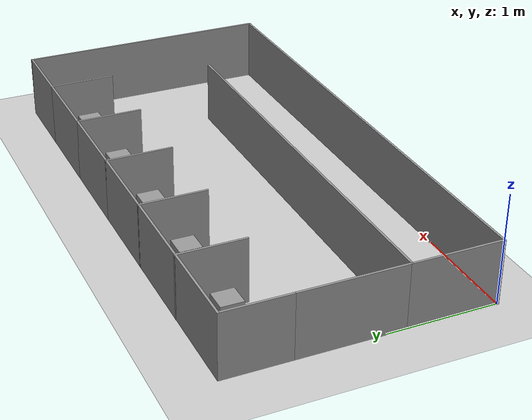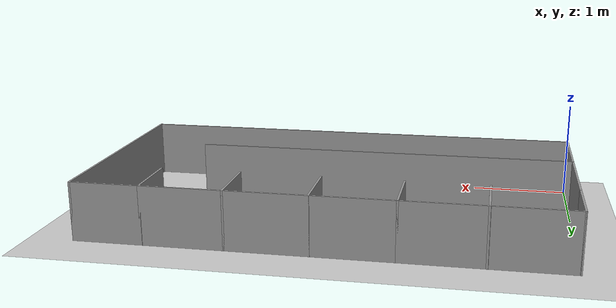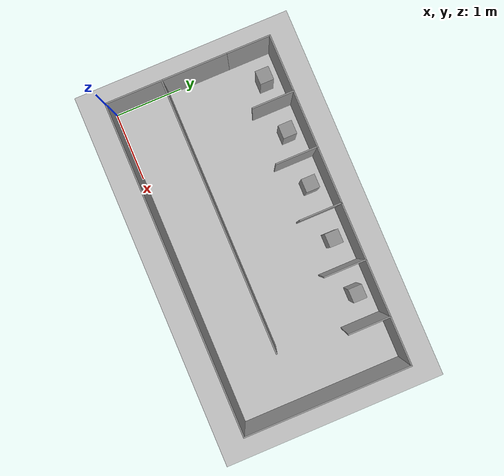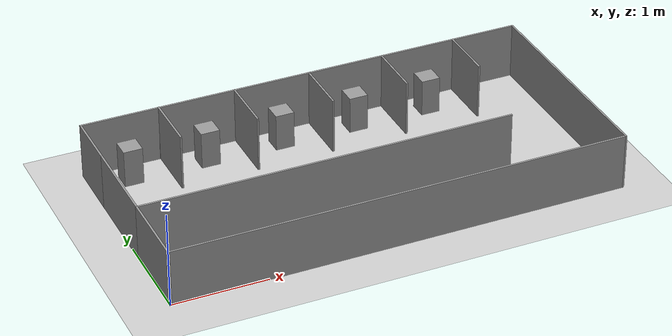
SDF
<sdf version="1.7">
 <world name="default">
  <light name="sun" type="directional">
   <pose>0 0 10 0 -0 0</pose>
   <diffuse>0.8 0.8 0.8 1</diffuse>
   <specular>0.2 0.2 0.2 1</specular>
   <attenuation>
    <range>1000</range>
    <constant>0.9</constant>
    <linear>0.01</linear>
    <quadratic>0.001</quadratic>
   </attenuation>
   <direction>-0.5 0.1 -0.9</direction>
   <spot><inner_angle>0</inner_angle><outer_angle>0</outer_angle><falloff>0</falloff></spot>
  </light>
  <model name="ground_plane">
   <static>1</static>
   <link name="link">
    <collision name="collision">
     <geometry><plane><normal>0 0 1</normal><size>100 100</size></plane></geometry>
     <surface>
      <contact><collide_bitmask>65535</collide_bitmask></contact>
      <friction><ode><mu>100</mu><mu2>50</mu2></ode></friction>
     </surface>
    </collision>
    <visual name="visual">
     <cast_shadows>0</cast_shadows>
     <geometry><plane><normal>0 0 1</normal><size>100 100</size></plane></geometry>
     <material>
      <script><uri>file://media/materials/scripts/gazebo.material</uri><name>Gazebo/Grey</name></script>
     </material>
    </visual>
   </link>
  </model>
  <gravity>0 0 -9.8</gravity>
  <magnetic_field>6e-06 2.3e-05 -4.2e-05</magnetic_field>
  <atmosphere type="adiabatic"/>
  <physics type="ode">
   <max_step_size>0.001</max_step_size>
   <real_time_factor>1</real_time_factor>
   <real_time_update_rate>1000</real_time_update_rate>
  </physics>
  <scene><ambient>0.4 0.4 0.4 1</ambient><background>0.7 0.7 0.7 1</background><shadows>1</shadows></scene>
  <spherical_coordinates>
   <surface_model>EARTH_WGS84</surface_model>
   <latitude_deg>0</latitude_deg>
   <longitude_deg>0</longitude_deg>
   <elevation>0</elevation>
   <heading_deg>0</heading_deg>
  </spherical_coordinates>
  <model name="test">
   <link name="Wall_101">
    <pose>-1.99 1.2 0 0 -0 0</pose>
    <visual name="Wall_101_Visual">
     <pose>0 0 0.3 0 -0 0</pose>
     <geometry><box><size>0.84 0.02 0.6</size></box></geometry>
     <material>
      <script><uri>file://media/materials/scripts/gazebo.material</uri><name>Gazebo/Grey</name></script>
      <ambient>1 1 1 1</ambient>
      <shader type="pixel"/>
     </material>
     <meta><layer>0</layer></meta>
    </visual>
    <collision name="Wall_101_Collision">
     <pose>0 0 0.3 0 -0 0</pose>
     <geometry><box><size>0.84 0.02 0.6</size></box></geometry>
     <surface>
      <friction>
       <ode><mu>1</mu><mu2>1</mu2><fdir1>0 0 0</fdir1><slip1>0</slip1><slip2>0</slip2></ode>
       <torsional>
        <coefficient>1</coefficient>
        <patch_radius>0</patch_radius>
        <surface_radius>0</surface_radius>
        <use_patch_radius>1</use_patch_radius>
        <ode><slip>0</slip></ode>
       </torsional>
      </friction>
      <bounce><restitution_coefficient>0</restitution_coefficient><threshold>1e+06</threshold></bounce>
      <contact>
       <collide_without_contact>0</collide_without_contact>
       <collide_without_contact_bitmask>1</collide_without_contact_bitmask>
       <collide_bitmask>1</collide_bitmask>
       <ode>
        <soft_cfm>0</soft_cfm>
        <soft_erp>0.2</soft_erp>
        <kp>1e+13</kp>
        <kd>1</kd>
        <max_vel>0.01</max_vel>
        <min_depth>0</min_depth>
       </ode>
       <bullet>
        <split_impulse>1</split_impulse>
        <split_impulse_penetration_threshold>-0.01</split_impulse_penetration_threshold>
        <soft_cfm>0</soft_cfm>
        <soft_erp>0.2</soft_erp>
        <kp>1e+13</kp>
        <kd>1</kd>
       </bullet>
      </contact>
     </surface>
    </collision>
   </link>
   <link name="Wall_103">
    <pose>-1.57705 0.901891 0 0 0 -1.5708</pose>
    <visual name="Wall_103_Visual">
     <pose>0 0 0.3 0 -0 0</pose>
     <geometry><box><size>0.62 0.02 0.6</size></box></geometry>
     <material>
      <script><uri>file://media/materials/scripts/gazebo.material</uri><name>Gazebo/Grey</name></script>
      <ambient>1 1 1 1</ambient>
      <shader type="pixel"/>
     </material>
     <meta><layer>0</layer></meta>
    </visual>
    <collision name="Wall_103_Collision">
     <pose>0 0 0.3 0 -0 0</pose>
     <geometry><box><size>0.62 0.02 0.6</size></box></geometry>
     <surface>
      <friction>
       <ode><mu>1</mu><mu2>1</mu2><fdir1>0 0 0</fdir1><slip1>0</slip1><slip2>0</slip2></ode>
       <torsional>
        <coefficient>1</coefficient>
        <patch_radius>0</patch_radius>
        <surface_radius>0</surface_radius>
        <use_patch_radius>1</use_patch_radius>
        <ode><slip>0</slip></ode>
       </torsional>
      </friction>
      <bounce><restitution_coefficient>0</restitution_coefficient><threshold>1e+06</threshold></bounce>
      <contact>
       <collide_without_contact>0</collide_without_contact>
       <collide_without_contact_bitmask>1</collide_without_contact_bitmask>
       <collide_bitmask>1</collide_bitmask>
       <ode>
        <soft_cfm>0</soft_cfm>
        <soft_erp>0.2</soft_erp>
        <kp>1e+13</kp>
        <kd>1</kd>
        <max_vel>0.01</max_vel>
        <min_depth>0</min_depth>
       </ode>
       <bullet>
        <split_impulse>1</split_impulse>
        <split_impulse_penetration_threshold>-0.01</split_impulse_penetration_threshold>
        <soft_cfm>0</soft_cfm>
        <soft_erp>0.2</soft_erp>
        <kp>1e+13</kp>
        <kd>1</kd>
       </bullet>
      </contact>
     </surface>
    </collision>
   </link>
   <link name="Wall_105">
    <pose>-1.17 1.2 0 0 -0 0</pose>
    <visual name="Wall_105_Visual">
     <pose>0 0 0.3 0 -0 0</pose>
     <geometry><box><size>0.84 0.02 0.6</size></box></geometry>
     <material>
      <script><uri>file://media/materials/scripts/gazebo.material</uri><name>Gazebo/Grey</name></script>
      <ambient>1 1 1 1</ambient>
      <shader type="pixel"/>
     </material>
     <meta><layer>0</layer></meta>
    </visual>
    <collision name="Wall_105_Collision">
     <pose>0 0 0.3 0 -0 0</pose>
     <geometry><box><size>0.84 0.02 0.6</size></box></geometry>
     <surface>
      <friction>
       <ode><mu>1</mu><mu2>1</mu2><fdir1>0 0 0</fdir1><slip1>0</slip1><slip2>0</slip2></ode>
       <torsional>
        <coefficient>1</coefficient>
        <patch_radius>0</patch_radius>
        <surface_radius>0</surface_radius>
        <use_patch_radius>1</use_patch_radius>
        <ode><slip>0</slip></ode>
       </torsional>
      </friction>
      <bounce><restitution_coefficient>0</restitution_coefficient><threshold>1e+06</threshold></bounce>
      <contact>
       <collide_without_contact>0</collide_without_contact>
       <collide_without_contact_bitmask>1</collide_without_contact_bitmask>
       <collide_bitmask>1</collide_bitmask>
       <ode>
        <soft_cfm>0</soft_cfm>
        <soft_erp>0.2</soft_erp>
        <kp>1e+13</kp>
        <kd>1</kd>
        <max_vel>0.01</max_vel>
        <min_depth>0</min_depth>
       </ode>
       <bullet>
        <split_impulse>1</split_impulse>
        <split_impulse_penetration_threshold>-0.01</split_impulse_penetration_threshold>
        <soft_cfm>0</soft_cfm>
        <soft_erp>0.2</soft_erp>
        <kp>1e+13</kp>
        <kd>1</kd>
       </bullet>
      </contact>
     </surface>
    </collision>
   </link>
   <link name="Wall_107">
    <pose>-0.76 0.9 0 0 0 -1.5708</pose>
    <visual name="Wall_107_Visual">
     <pose>0 0 0.3 0 -0 0</pose>
     <geometry><box><size>0.62 0.02 0.6</size></box></geometry>
     <material>
      <script><uri>file://media/materials/scripts/gazebo.material</uri><name>Gazebo/Grey</name></script>
      <ambient>1 1 1 1</ambient>
      <shader type="pixel"/>
     </material>
     <meta><layer>0</layer></meta>
    </visual>
    <collision name="Wall_107_Collision">
     <pose>0 0 0.3 0 -0 0</pose>
     <geometry><box><size>0.62 0.02 0.6</size></box></geometry>
     <surface>
      <friction>
       <ode><mu>1</mu><mu2>1</mu2><fdir1>0 0 0</fdir1><slip1>0</slip1><slip2>0</slip2></ode>
       <torsional>
        <coefficient>1</coefficient>
        <patch_radius>0</patch_radius>
        <surface_radius>0</surface_radius>
        <use_patch_radius>1</use_patch_radius>
        <ode><slip>0</slip></ode>
       </torsional>
      </friction>
      <bounce><restitution_coefficient>0</restitution_coefficient><threshold>1e+06</threshold></bounce>
      <contact>
       <collide_without_contact>0</collide_without_contact>
       <collide_without_contact_bitmask>1</collide_without_contact_bitmask>
       <collide_bitmask>1</collide_bitmask>
       <ode>
        <soft_cfm>0</soft_cfm>
        <soft_erp>0.2</soft_erp>
        <kp>1e+13</kp>
        <kd>1</kd>
        <max_vel>0.01</max_vel>
        <min_depth>0</min_depth>
       </ode>
       <bullet>
        <split_impulse>1</split_impulse>
        <split_impulse_penetration_threshold>-0.01</split_impulse_penetration_threshold>
        <soft_cfm>0</soft_cfm>
        <soft_erp>0.2</soft_erp>
        <kp>1e+13</kp>
        <kd>1</kd>
       </bullet>
      </contact>
     </surface>
    </collision>
   </link>
   <link name="Wall_109">
    <pose>-0.35 1.2 0 0 -0 0</pose>
    <visual name="Wall_109_Visual">
     <pose>0 0 0.3 0 -0 0</pose>
     <geometry><box><size>0.84 0.02 0.6</size></box></geometry>
     <material>
      <script><uri>file://media/materials/scripts/gazebo.material</uri><name>Gazebo/Grey</name></script>
      <ambient>1 1 1 1</ambient>
      <shader type="pixel"/>
     </material>
     <meta><layer>0</layer></meta>
    </visual>
    <collision name="Wall_109_Collision">
     <pose>0 0 0.3 0 -0 0</pose>
     <geometry><box><size>0.84 0.02 0.6</size></box></geometry>
     <surface>
      <friction>
       <ode><mu>1</mu><mu2>1</mu2><fdir1>0 0 0</fdir1><slip1>0</slip1><slip2>0</slip2></ode>
       <torsional>
        <coefficient>1</coefficient>
        <patch_radius>0</patch_radius>
        <surface_radius>0</surface_radius>
        <use_patch_radius>1</use_patch_radius>
        <ode><slip>0</slip></ode>
       </torsional>
      </friction>
      <bounce><restitution_coefficient>0</restitution_coefficient><threshold>1e+06</threshold></bounce>
      <contact>
       <collide_without_contact>0</collide_without_contact>
       <collide_without_contact_bitmask>1</collide_without_contact_bitmask>
       <collide_bitmask>1</collide_bitmask>
       <ode>
        <soft_cfm>0</soft_cfm>
        <soft_erp>0.2</soft_erp>
        <kp>1e+13</kp>
        <kd>1</kd>
        <max_vel>0.01</max_vel>
        <min_depth>0</min_depth>
       </ode>
       <bullet>
        <split_impulse>1</split_impulse>
        <split_impulse_penetration_threshold>-0.01</split_impulse_penetration_threshold>
        <soft_cfm>0</soft_cfm>
        <soft_erp>0.2</soft_erp>
        <kp>1e+13</kp>
        <kd>1</kd>
       </bullet>
      </contact>
     </surface>
    </collision>
   </link>
   <link name="Wall_112">
    <pose>0.06 0.9 0 0 0 -1.5708</pose>
    <visual name="Wall_112_Visual">
     <pose>0 0 0.3 0 -0 0</pose>
     <geometry><box><size>0.62 0.02 0.6</size></box></geometry>
     <material>
      <script><uri>file://media/materials/scripts/gazebo.material</uri><name>Gazebo/Grey</name></script>
      <ambient>1 1 1 1</ambient>
      <shader type="pixel"/>
     </material>
     <meta><layer>0</layer></meta>
    </visual>
    <collision name="Wall_112_Collision">
     <pose>0 0 0.3 0 -0 0</pose>
     <geometry><box><size>0.62 0.02 0.6</size></box></geometry>
     <surface>
      <friction>
       <ode><mu>1</mu><mu2>1</mu2><fdir1>0 0 0</fdir1><slip1>0</slip1><slip2>0</slip2></ode>
       <torsional>
        <coefficient>1</coefficient>
        <patch_radius>0</patch_radius>
        <surface_radius>0</surface_radius>
        <use_patch_radius>1</use_patch_radius>
        <ode><slip>0</slip></ode>
       </torsional>
      </friction>
      <bounce><restitution_coefficient>0</restitution_coefficient><threshold>1e+06</threshold></bounce>
      <contact>
       <collide_without_contact>0</collide_without_contact>
       <collide_without_contact_bitmask>1</collide_without_contact_bitmask>
       <collide_bitmask>1</collide_bitmask>
       <ode>
        <soft_cfm>0</soft_cfm>
        <soft_erp>0.2</soft_erp>
        <kp>1e+13</kp>
        <kd>1</kd>
        <max_vel>0.01</max_vel>
        <min_depth>0</min_depth>
       </ode>
       <bullet>
        <split_impulse>1</split_impulse>
        <split_impulse_penetration_threshold>-0.01</split_impulse_penetration_threshold>
        <soft_cfm>0</soft_cfm>
        <soft_erp>0.2</soft_erp>
        <kp>1e+13</kp>
        <kd>1</kd>
       </bullet>
      </contact>
     </surface>
    </collision>
   </link>
   <link name="Wall_116">
    <pose>0.47 1.2 0 0 -0 0</pose>
    <visual name="Wall_116_Visual">
     <pose>0 0 0.3 0 -0 0</pose>
     <geometry><box><size>0.84 0.02 0.6</size></box></geometry>
     <material>
      <script><uri>file://media/materials/scripts/gazebo.material</uri><name>Gazebo/Grey</name></script>
      <ambient>1 1 1 1</ambient>
      <shader type="pixel"/>
     </material>
     <meta><layer>0</layer></meta>
    </visual>
    <collision name="Wall_116_Collision">
     <pose>0 0 0.3 0 -0 0</pose>
     <geometry><box><size>0.84 0.02 0.6</size></box></geometry>
     <surface>
      <friction>
       <ode><mu>1</mu><mu2>1</mu2><fdir1>0 0 0</fdir1><slip1>0</slip1><slip2>0</slip2></ode>
       <torsional>
        <coefficient>1</coefficient>
        <patch_radius>0</patch_radius>
        <surface_radius>0</surface_radius>
        <use_patch_radius>1</use_patch_radius>
        <ode><slip>0</slip></ode>
       </torsional>
      </friction>
      <bounce><restitution_coefficient>0</restitution_coefficient><threshold>1e+06</threshold></bounce>
      <contact>
       <collide_without_contact>0</collide_without_contact>
       <collide_without_contact_bitmask>1</collide_without_contact_bitmask>
       <collide_bitmask>1</collide_bitmask>
       <ode>
        <soft_cfm>0</soft_cfm>
        <soft_erp>0.2</soft_erp>
        <kp>1e+13</kp>
        <kd>1</kd>
        <max_vel>0.01</max_vel>
        <min_depth>0</min_depth>
       </ode>
       <bullet>
        <split_impulse>1</split_impulse>
        <split_impulse_penetration_threshold>-0.01</split_impulse_penetration_threshold>
        <soft_cfm>0</soft_cfm>
        <soft_erp>0.2</soft_erp>
        <kp>1e+13</kp>
        <kd>1</kd>
       </bullet>
      </contact>
     </surface>
    </collision>
   </link>
   <link name="Wall_118">
    <pose>0.88 0.9 0 0 0 -1.5708</pose>
    <visual name="Wall_118_Visual">
     <pose>0 0 0.3 0 -0 0</pose>
     <geometry><box><size>0.62 0.02 0.6</size></box></geometry>
     <material>
      <script><uri>file://media/materials/scripts/gazebo.material</uri><name>Gazebo/Grey</name></script>
      <ambient>1 1 1 1</ambient>
      <shader type="pixel"/>
     </material>
     <meta><layer>0</layer></meta>
    </visual>
    <collision name="Wall_118_Collision">
     <pose>0 0 0.3 0 -0 0</pose>
     <geometry><box><size>0.62 0.02 0.6</size></box></geometry>
     <surface>
      <friction>
       <ode><mu>1</mu><mu2>1</mu2><fdir1>0 0 0</fdir1><slip1>0</slip1><slip2>0</slip2></ode>
       <torsional>
        <coefficient>1</coefficient>
        <patch_radius>0</patch_radius>
        <surface_radius>0</surface_radius>
        <use_patch_radius>1</use_patch_radius>
        <ode><slip>0</slip></ode>
       </torsional>
      </friction>
      <bounce><restitution_coefficient>0</restitution_coefficient><threshold>1e+06</threshold></bounce>
      <contact>
       <collide_without_contact>0</collide_without_contact>
       <collide_without_contact_bitmask>1</collide_without_contact_bitmask>
       <collide_bitmask>1</collide_bitmask>
       <ode>
        <soft_cfm>0</soft_cfm>
        <soft_erp>0.2</soft_erp>
        <kp>1e+13</kp>
        <kd>1</kd>
        <max_vel>0.01</max_vel>
        <min_depth>0</min_depth>
       </ode>
       <bullet>
        <split_impulse>1</split_impulse>
        <split_impulse_penetration_threshold>-0.01</split_impulse_penetration_threshold>
        <soft_cfm>0</soft_cfm>
        <soft_erp>0.2</soft_erp>
        <kp>1e+13</kp>
        <kd>1</kd>
       </bullet>
      </contact>
     </surface>
    </collision>
   </link>
   <link name="Wall_121">
    <pose>1.29 1.2 0 0 -0 0</pose>
    <visual name="Wall_121_Visual">
     <pose>0 0 0.3 0 -0 0</pose>
     <geometry><box><size>0.84 0.02 0.6</size></box></geometry>
     <material>
      <script><uri>file://media/materials/scripts/gazebo.material</uri><name>Gazebo/Grey</name></script>
      <ambient>1 1 1 1</ambient>
      <shader type="pixel"/>
     </material>
     <meta><layer>0</layer></meta>
    </visual>
    <collision name="Wall_121_Collision">
     <pose>0 0 0.3 0 -0 0</pose>
     <geometry><box><size>0.84 0.02 0.6</size></box></geometry>
     <surface>
      <friction>
       <ode><mu>1</mu><mu2>1</mu2><fdir1>0 0 0</fdir1><slip1>0</slip1><slip2>0</slip2></ode>
       <torsional>
        <coefficient>1</coefficient>
        <patch_radius>0</patch_radius>
        <surface_radius>0</surface_radius>
        <use_patch_radius>1</use_patch_radius>
        <ode><slip>0</slip></ode>
       </torsional>
      </friction>
      <bounce><restitution_coefficient>0</restitution_coefficient><threshold>1e+06</threshold></bounce>
      <contact>
       <collide_without_contact>0</collide_without_contact>
       <collide_without_contact_bitmask>1</collide_without_contact_bitmask>
       <collide_bitmask>1</collide_bitmask>
       <ode>
        <soft_cfm>0</soft_cfm>
        <soft_erp>0.2</soft_erp>
        <kp>1e+13</kp>
        <kd>1</kd>
        <max_vel>0.01</max_vel>
        <min_depth>0</min_depth>
       </ode>
       <bullet>
        <split_impulse>1</split_impulse>
        <split_impulse_penetration_threshold>-0.01</split_impulse_penetration_threshold>
        <soft_cfm>0</soft_cfm>
        <soft_erp>0.2</soft_erp>
        <kp>1e+13</kp>
        <kd>1</kd>
       </bullet>
      </contact>
     </surface>
    </collision>
   </link>
   <link name="Wall_123">
    <pose>1.7 0.9 0 0 0 -1.5708</pose>
    <visual name="Wall_123_Visual">
     <pose>0 0 0.3 0 -0 0</pose>
     <geometry><box><size>0.62 0.02 0.6</size></box></geometry>
     <material>
      <script><uri>file://media/materials/scripts/gazebo.material</uri><name>Gazebo/Grey</name></script>
      <ambient>1 1 1 1</ambient>
      <shader type="pixel"/>
     </material>
     <meta><layer>0</layer></meta>
    </visual>
    <collision name="Wall_123_Collision">
     <pose>0 0 0.3 0 -0 0</pose>
     <geometry><box><size>0.62 0.02 0.6</size></box></geometry>
     <surface>
      <friction>
       <ode><mu>1</mu><mu2>1</mu2><fdir1>0 0 0</fdir1><slip1>0</slip1><slip2>0</slip2></ode>
       <torsional>
        <coefficient>1</coefficient>
        <patch_radius>0</patch_radius>
        <surface_radius>0</surface_radius>
        <use_patch_radius>1</use_patch_radius>
        <ode><slip>0</slip></ode>
       </torsional>
      </friction>
      <bounce><restitution_coefficient>0</restitution_coefficient><threshold>1e+06</threshold></bounce>
      <contact>
       <collide_without_contact>0</collide_without_contact>
       <collide_without_contact_bitmask>1</collide_without_contact_bitmask>
       <collide_bitmask>1</collide_bitmask>
       <ode>
        <soft_cfm>0</soft_cfm>
        <soft_erp>0.2</soft_erp>
        <kp>1e+13</kp>
        <kd>1</kd>
        <max_vel>0.01</max_vel>
        <min_depth>0</min_depth>
       </ode>
       <bullet>
        <split_impulse>1</split_impulse>
        <split_impulse_penetration_threshold>-0.01</split_impulse_penetration_threshold>
        <soft_cfm>0</soft_cfm>
        <soft_erp>0.2</soft_erp>
        <kp>1e+13</kp>
        <kd>1</kd>
       </bullet>
      </contact>
     </surface>
    </collision>
   </link>
   <link name="Wall_125">
    <pose>2.05 1.2 0 0 -0 0</pose>
    <visual name="Wall_125_Visual">
     <pose>0 0 0.3 0 -0 0</pose>
     <geometry><box><size>0.72 0.02 0.6</size></box></geometry>
     <material>
      <script><uri>file://media/materials/scripts/gazebo.material</uri><name>Gazebo/Grey</name></script>
      <ambient>1 1 1 1</ambient>
      <shader type="pixel"/>
     </material>
     <meta><layer>0</layer></meta>
    </visual>
    <collision name="Wall_125_Collision">
     <pose>0 0 0.3 0 -0 0</pose>
     <geometry><box><size>0.72 0.02 0.6</size></box></geometry>
     <surface>
      <friction>
       <ode><mu>1</mu><mu2>1</mu2><fdir1>0 0 0</fdir1><slip1>0</slip1><slip2>0</slip2></ode>
       <torsional>
        <coefficient>1</coefficient>
        <patch_radius>0</patch_radius>
        <surface_radius>0</surface_radius>
        <use_patch_radius>1</use_patch_radius>
        <ode><slip>0</slip></ode>
       </torsional>
      </friction>
      <bounce><restitution_coefficient>0</restitution_coefficient><threshold>1e+06</threshold></bounce>
      <contact>
       <collide_without_contact>0</collide_without_contact>
       <collide_without_contact_bitmask>1</collide_without_contact_bitmask>
       <collide_bitmask>1</collide_bitmask>
       <ode>
        <soft_cfm>0</soft_cfm>
        <soft_erp>0.2</soft_erp>
        <kp>1e+13</kp>
        <kd>1</kd>
        <max_vel>0.01</max_vel>
        <min_depth>0</min_depth>
       </ode>
       <bullet>
        <split_impulse>1</split_impulse>
        <split_impulse_penetration_threshold>-0.01</split_impulse_penetration_threshold>
        <soft_cfm>0</soft_cfm>
        <soft_erp>0.2</soft_erp>
        <kp>1e+13</kp>
        <kd>1</kd>
       </bullet>
      </contact>
     </surface>
    </collision>
   </link>
   <link name="Wall_129">
    <pose>2.4 0 0 0 0 -1.5708</pose>
    <visual name="Wall_129_Visual">
     <pose>0 0 0.3 0 -0 0</pose>
     <geometry><box><size>2.42 0.02 0.6</size></box></geometry>
     <material>
      <script><uri>file://media/materials/scripts/gazebo.material</uri><name>Gazebo/Grey</name></script>
      <ambient>1 1 1 1</ambient>
      <shader type="pixel"/>
     </material>
     <meta><layer>0</layer></meta>
    </visual>
    <collision name="Wall_129_Collision">
     <pose>0 0 0.3 0 -0 0</pose>
     <geometry><box><size>2.42 0.02 0.6</size></box></geometry>
     <surface>
      <friction>
       <ode><mu>1</mu><mu2>1</mu2><fdir1>0 0 0</fdir1><slip1>0</slip1><slip2>0</slip2></ode>
       <torsional>
        <coefficient>1</coefficient>
        <patch_radius>0</patch_radius>
        <surface_radius>0</surface_radius>
        <use_patch_radius>1</use_patch_radius>
        <ode><slip>0</slip></ode>
       </torsional>
      </friction>
      <bounce><restitution_coefficient>0</restitution_coefficient><threshold>1e+06</threshold></bounce>
      <contact>
       <collide_without_contact>0</collide_without_contact>
       <collide_without_contact_bitmask>1</collide_without_contact_bitmask>
       <collide_bitmask>1</collide_bitmask>
       <ode>
        <soft_cfm>0</soft_cfm>
        <soft_erp>0.2</soft_erp>
        <kp>1e+13</kp>
        <kd>1</kd>
        <max_vel>0.01</max_vel>
        <min_depth>0</min_depth>
       </ode>
       <bullet>
        <split_impulse>1</split_impulse>
        <split_impulse_penetration_threshold>-0.01</split_impulse_penetration_threshold>
        <soft_cfm>0</soft_cfm>
        <soft_erp>0.2</soft_erp>
        <kp>1e+13</kp>
        <kd>1</kd>
       </bullet>
      </contact>
     </surface>
    </collision>
   </link>
   <link name="Wall_91">
    <pose>-0.01 -1.2 0 0 -0 0</pose>
    <visual name="Wall_91_Visual">
     <pose>0 0 0.3 0 -0 0</pose>
     <geometry><box><size>4.8 0.02 0.6</size></box></geometry>
     <material>
      <script><uri>file://media/materials/scripts/gazebo.material</uri><name>Gazebo/Grey</name></script>
      <ambient>1 1 1 1</ambient>
      <shader type="pixel"/>
     </material>
     <meta><layer>0</layer></meta>
    </visual>
    <collision name="Wall_91_Collision">
     <pose>0 0 0.3 0 -0 0</pose>
     <geometry><box><size>4.8 0.02 0.6</size></box></geometry>
     <surface>
      <friction>
       <ode><mu>1</mu><mu2>1</mu2><fdir1>0 0 0</fdir1><slip1>0</slip1><slip2>0</slip2></ode>
       <torsional>
        <coefficient>1</coefficient>
        <patch_radius>0</patch_radius>
        <surface_radius>0</surface_radius>
        <use_patch_radius>1</use_patch_radius>
        <ode><slip>0</slip></ode>
       </torsional>
      </friction>
      <bounce><restitution_coefficient>0</restitution_coefficient><threshold>1e+06</threshold></bounce>
      <contact>
       <collide_without_contact>0</collide_without_contact>
       <collide_without_contact_bitmask>1</collide_without_contact_bitmask>
       <collide_bitmask>1</collide_bitmask>
       <ode>
        <soft_cfm>0</soft_cfm>
        <soft_erp>0.2</soft_erp>
        <kp>1e+13</kp>
        <kd>1</kd>
        <max_vel>0.01</max_vel>
        <min_depth>0</min_depth>
       </ode>
       <bullet>
        <split_impulse>1</split_impulse>
        <split_impulse_penetration_threshold>-0.01</split_impulse_penetration_threshold>
        <soft_cfm>0</soft_cfm>
        <soft_erp>0.2</soft_erp>
        <kp>1e+13</kp>
        <kd>1</kd>
       </bullet>
      </contact>
     </surface>
    </collision>
   </link>
   <link name="Wall_93">
    <pose>-2.4 -0.79 0 0 -0 1.5708</pose>
    <visual name="Wall_93_Visual">
     <pose>0 0 0.3 0 -0 0</pose>
     <geometry><box><size>0.84 0.02 0.6</size></box></geometry>
     <material>
      <script><uri>file://media/materials/scripts/gazebo.material</uri><name>Gazebo/Grey</name></script>
      <ambient>1 1 1 1</ambient>
      <shader type="pixel"/>
     </material>
     <meta><layer>0</layer></meta>
    </visual>
    <collision name="Wall_93_Collision">
     <pose>0 0 0.3 0 -0 0</pose>
     <geometry><box><size>0.84 0.02 0.6</size></box></geometry>
     <surface>
      <friction>
       <ode><mu>1</mu><mu2>1</mu2><fdir1>0 0 0</fdir1><slip1>0</slip1><slip2>0</slip2></ode>
       <torsional>
        <coefficient>1</coefficient>
        <patch_radius>0</patch_radius>
        <surface_radius>0</surface_radius>
        <use_patch_radius>1</use_patch_radius>
        <ode><slip>0</slip></ode>
       </torsional>
      </friction>
      <bounce><restitution_coefficient>0</restitution_coefficient><threshold>1e+06</threshold></bounce>
      <contact>
       <collide_without_contact>0</collide_without_contact>
       <collide_without_contact_bitmask>1</collide_without_contact_bitmask>
       <collide_bitmask>1</collide_bitmask>
       <ode>
        <soft_cfm>0</soft_cfm>
        <soft_erp>0.2</soft_erp>
        <kp>1e+13</kp>
        <kd>1</kd>
        <max_vel>0.01</max_vel>
        <min_depth>0</min_depth>
       </ode>
       <bullet>
        <split_impulse>1</split_impulse>
        <split_impulse_penetration_threshold>-0.01</split_impulse_penetration_threshold>
        <soft_cfm>0</soft_cfm>
        <soft_erp>0.2</soft_erp>
        <kp>1e+13</kp>
        <kd>1</kd>
       </bullet>
      </contact>
     </surface>
    </collision>
   </link>
   <link name="Wall_95">
    <pose>-0.42 -0.38 0 0 -0 0</pose>
    <visual name="Wall_95_Visual">
     <pose>0 0 0.3 0 -0 0</pose>
     <geometry><box><size>3.98 0.02 0.6</size></box></geometry>
     <material>
      <script><uri>file://media/materials/scripts/gazebo.material</uri><name>Gazebo/Grey</name></script>
      <ambient>1 1 1 1</ambient>
      <shader type="pixel"/>
     </material>
     <meta><layer>0</layer></meta>
    </visual>
    <collision name="Wall_95_Collision">
     <pose>0 0 0.3 0 -0 0</pose>
     <geometry><box><size>3.98 0.02 0.6</size></box></geometry>
     <surface>
      <friction>
       <ode><mu>1</mu><mu2>1</mu2><fdir1>0 0 0</fdir1><slip1>0</slip1><slip2>0</slip2></ode>
       <torsional>
        <coefficient>1</coefficient>
        <patch_radius>0</patch_radius>
        <surface_radius>0</surface_radius>
        <use_patch_radius>1</use_patch_radius>
        <ode><slip>0</slip></ode>
       </torsional>
      </friction>
      <bounce><restitution_coefficient>0</restitution_coefficient><threshold>1e+06</threshold></bounce>
      <contact>
       <collide_without_contact>0</collide_without_contact>
       <collide_without_contact_bitmask>1</collide_without_contact_bitmask>
       <collide_bitmask>1</collide_bitmask>
       <ode>
        <soft_cfm>0</soft_cfm>
        <soft_erp>0.2</soft_erp>
        <kp>1e+13</kp>
        <kd>1</kd>
        <max_vel>0.01</max_vel>
        <min_depth>0</min_depth>
       </ode>
       <bullet>
        <split_impulse>1</split_impulse>
        <split_impulse_penetration_threshold>-0.01</split_impulse_penetration_threshold>
        <soft_cfm>0</soft_cfm>
        <soft_erp>0.2</soft_erp>
        <kp>1e+13</kp>
        <kd>1</kd>
       </bullet>
      </contact>
     </surface>
    </collision>
   </link>
   <link name="Wall_97">
    <pose>-2.4 0.1 0 0 -0 1.5708</pose>
    <visual name="Wall_97_Visual">
     <pose>0 0 0.3 0 -0 0</pose>
     <geometry><box><size>0.98 0.02 0.6</size></box></geometry>
     <material>
      <script><uri>file://media/materials/scripts/gazebo.material</uri><name>Gazebo/Grey</name></script>
      <ambient>1 1 1 1</ambient>
      <shader type="pixel"/>
     </material>
     <meta><layer>0</layer></meta>
    </visual>
    <collision name="Wall_97_Collision">
     <pose>0 0 0.3 0 -0 0</pose>
     <geometry><box><size>0.98 0.02 0.6</size></box></geometry>
     <surface>
      <friction>
       <ode><mu>1</mu><mu2>1</mu2><fdir1>0 0 0</fdir1><slip1>0</slip1><slip2>0</slip2></ode>
       <torsional>
        <coefficient>1</coefficient>
        <patch_radius>0</patch_radius>
        <surface_radius>0</surface_radius>
        <use_patch_radius>1</use_patch_radius>
        <ode><slip>0</slip></ode>
       </torsional>
      </friction>
      <bounce><restitution_coefficient>0</restitution_coefficient><threshold>1e+06</threshold></bounce>
      <contact>
       <collide_without_contact>0</collide_without_contact>
       <collide_without_contact_bitmask>1</collide_without_contact_bitmask>
       <collide_bitmask>1</collide_bitmask>
       <ode>
        <soft_cfm>0</soft_cfm>
        <soft_erp>0.2</soft_erp>
        <kp>1e+13</kp>
        <kd>1</kd>
        <max_vel>0.01</max_vel>
        <min_depth>0</min_depth>
       </ode>
       <bullet>
        <split_impulse>1</split_impulse>
        <split_impulse_penetration_threshold>-0.01</split_impulse_penetration_threshold>
        <soft_cfm>0</soft_cfm>
        <soft_erp>0.2</soft_erp>
        <kp>1e+13</kp>
        <kd>1</kd>
       </bullet>
      </contact>
     </surface>
    </collision>
   </link>
   <link name="Wall_99">
    <pose>-2.4 0.89 0 0 -0 1.5708</pose>
    <visual name="Wall_99_Visual">
     <pose>0 0 0.3 0 -0 0</pose>
     <geometry><box><size>0.64 0.02 0.6</size></box></geometry>
     <material>
      <script><uri>file://media/materials/scripts/gazebo.material</uri><name>Gazebo/Grey</name></script>
      <ambient>1 1 1 1</ambient>
      <shader type="pixel"/>
     </material>
     <meta><layer>0</layer></meta>
    </visual>
    <collision name="Wall_99_Collision">
     <pose>0 0 0.3 0 -0 0</pose>
     <geometry><box><size>0.64 0.02 0.6</size></box></geometry>
     <surface>
      <friction>
       <ode><mu>1</mu><mu2>1</mu2><fdir1>0 0 0</fdir1><slip1>0</slip1><slip2>0</slip2></ode>
       <torsional>
        <coefficient>1</coefficient>
        <patch_radius>0</patch_radius>
        <surface_radius>0</surface_radius>
        <use_patch_radius>1</use_patch_radius>
        <ode><slip>0</slip></ode>
       </torsional>
      </friction>
      <bounce><restitution_coefficient>0</restitution_coefficient><threshold>1e+06</threshold></bounce>
      <contact>
       <collide_without_contact>0</collide_without_contact>
       <collide_without_contact_bitmask>1</collide_without_contact_bitmask>
       <collide_bitmask>1</collide_bitmask>
       <ode>
        <soft_cfm>0</soft_cfm>
        <soft_erp>0.2</soft_erp>
        <kp>1e+13</kp>
        <kd>1</kd>
        <max_vel>0.01</max_vel>
        <min_depth>0</min_depth>
       </ode>
       <bullet>
        <split_impulse>1</split_impulse>
        <split_impulse_penetration_threshold>-0.01</split_impulse_penetration_threshold>
        <soft_cfm>0</soft_cfm>
        <soft_erp>0.2</soft_erp>
        <kp>1e+13</kp>
        <kd>1</kd>
       </bullet>
      </contact>
     </surface>
    </collision>
   </link>
   <static>1</static>
   <pose>2.4 1.2 0 0 -0 0</pose>
  </model>
  <model name="unit_box">
   <link name="link">
    <inertial>
     <mass>1</mass>
     <inertia>
      <ixx>0.166667</ixx>
      <ixy>0</ixy>
      <ixz>0</ixz>
      <iyy>0.166667</iyy>
      <iyz>0</iyz>
      <izz>0.166667</izz>
     </inertia>
    </inertial>
    <visual name="visual">
     <geometry><box><size>0.2 0.2 0.4</size></box></geometry>
     <material>
      <script><name>Gazebo/Grey</name><uri>file://media/materials/scripts/gazebo.material</uri></script>
      <shader type="pixel"><normal_map>__default__</normal_map></shader>
      <ambient>0.3 0.3 0.3 1</ambient>
      <diffuse>0.7 0.7 0.7 1</diffuse>
      <specular>0.01 0.01 0.01 1</specular>
      <emissive>0 0 0 1</emissive>
     </material>
    </visual>
    <collision name="collision">
     <geometry><box><size>0.2 0.2 0.4</size></box></geometry>
     <surface>
      <friction>
       <ode><mu>1</mu><mu2>1</mu2><fdir1>0 0 0</fdir1><slip1>0</slip1><slip2>0</slip2></ode>
       <torsional>
        <coefficient>1</coefficient>
        <patch_radius>0</patch_radius>
        <surface_radius>0</surface_radius>
        <use_patch_radius>1</use_patch_radius>
        <ode><slip>0</slip></ode>
       </torsional>
      </friction>
      <bounce><restitution_coefficient>0</restitution_coefficient><threshold>1e+06</threshold></bounce>
      <contact>
       <collide_without_contact>0</collide_without_contact>
       <collide_without_contact_bitmask>1</collide_without_contact_bitmask>
       <collide_bitmask>1</collide_bitmask>
       <ode>
        <soft_cfm>0</soft_cfm>
        <soft_erp>0.2</soft_erp>
        <kp>1e+13</kp>
        <kd>1</kd>
        <max_vel>0.01</max_vel>
        <min_depth>0</min_depth>
       </ode>
       <bullet>
        <split_impulse>1</split_impulse>
        <split_impulse_penetration_threshold>-0.01</split_impulse_penetration_threshold>
        <soft_cfm>0</soft_cfm>
        <soft_erp>0.2</soft_erp>
        <kp>1e+13</kp>
        <kd>1</kd>
       </bullet>
      </contact>
     </surface>
    </collision>
   </link>
   <static>0</static>
   <pose>0.41 2.15 0.2 0 -0 0</pose>
  </model>
  <model name="unit_box_clone">
   <link name="link">
    <inertial>
     <mass>1</mass>
     <inertia>
      <ixx>0.166667</ixx>
      <ixy>0</ixy>
      <ixz>0</ixz>
      <iyy>0.166667</iyy>
      <iyz>0</iyz>
      <izz>0.166667</izz>
     </inertia>
    </inertial>
    <visual name="visual">
     <geometry><box><size>0.2 0.2 0.4</size></box></geometry>
     <material>
      <script><name>Gazebo/Grey</name><uri>file://media/materials/scripts/gazebo.material</uri></script>
      <shader type="pixel"><normal_map>__default__</normal_map></shader>
      <ambient>0.3 0.3 0.3 1</ambient>
      <diffuse>0.7 0.7 0.7 1</diffuse>
      <specular>0.01 0.01 0.01 1</specular>
      <emissive>0 0 0 1</emissive>
     </material>
    </visual>
    <collision name="collision">
     <geometry><box><size>0.2 0.2 0.4</size></box></geometry>
     <surface>
      <friction>
       <ode><mu>1</mu><mu2>1</mu2><fdir1>0 0 0</fdir1><slip1>0</slip1><slip2>0</slip2></ode>
       <torsional>
        <coefficient>1</coefficient>
        <patch_radius>0</patch_radius>
        <surface_radius>0</surface_radius>
        <use_patch_radius>1</use_patch_radius>
        <ode><slip>0</slip></ode>
       </torsional>
      </friction>
      <bounce><restitution_coefficient>0</restitution_coefficient><threshold>1e+06</threshold></bounce>
      <contact>
       <collide_without_contact>0</collide_without_contact>
       <collide_without_contact_bitmask>1</collide_without_contact_bitmask>
       <collide_bitmask>1</collide_bitmask>
       <ode>
        <soft_cfm>0</soft_cfm>
        <soft_erp>0.2</soft_erp>
        <kp>1e+13</kp>
        <kd>1</kd>
        <max_vel>0.01</max_vel>
        <min_depth>0</min_depth>
       </ode>
       <bullet>
        <split_impulse>1</split_impulse>
        <split_impulse_penetration_threshold>-0.01</split_impulse_penetration_threshold>
        <soft_cfm>0</soft_cfm>
        <soft_erp>0.2</soft_erp>
        <kp>1e+13</kp>
        <kd>1</kd>
       </bullet>
      </contact>
     </surface>
    </collision>
   </link>
   <static>0</static>
   <pose>1.23 2.15 0.2 0 -0 0</pose>
  </model>
  <model name="unit_box_clone_0">
   <link name="link">
    <inertial>
     <mass>1</mass>
     <inertia>
      <ixx>0.166667</ixx>
      <ixy>0</ixy>
      <ixz>0</ixz>
      <iyy>0.166667</iyy>
      <iyz>0</iyz>
      <izz>0.166667</izz>
     </inertia>
    </inertial>
    <visual name="visual">
     <geometry><box><size>0.2 0.2 0.4</size></box></geometry>
     <material>
      <script><name>Gazebo/Grey</name><uri>file://media/materials/scripts/gazebo.material</uri></script>
      <shader type="pixel"><normal_map>__default__</normal_map></shader>
      <ambient>0.3 0.3 0.3 1</ambient>
      <diffuse>0.7 0.7 0.7 1</diffuse>
      <specular>0.01 0.01 0.01 1</specular>
      <emissive>0 0 0 1</emissive>
     </material>
    </visual>
    <collision name="collision">
     <geometry><box><size>0.2 0.2 0.4</size></box></geometry>
     <surface>
      <friction>
       <ode><mu>1</mu><mu2>1</mu2><fdir1>0 0 0</fdir1><slip1>0</slip1><slip2>0</slip2></ode>
       <torsional>
        <coefficient>1</coefficient>
        <patch_radius>0</patch_radius>
        <surface_radius>0</surface_radius>
        <use_patch_radius>1</use_patch_radius>
        <ode><slip>0</slip></ode>
       </torsional>
      </friction>
      <bounce><restitution_coefficient>0</restitution_coefficient><threshold>1e+06</threshold></bounce>
      <contact>
       <collide_without_contact>0</collide_without_contact>
       <collide_without_contact_bitmask>1</collide_without_contact_bitmask>
       <collide_bitmask>1</collide_bitmask>
       <ode>
        <soft_cfm>0</soft_cfm>
        <soft_erp>0.2</soft_erp>
        <kp>1e+13</kp>
        <kd>1</kd>
        <max_vel>0.01</max_vel>
        <min_depth>0</min_depth>
       </ode>
       <bullet>
        <split_impulse>1</split_impulse>
        <split_impulse_penetration_threshold>-0.01</split_impulse_penetration_threshold>
        <soft_cfm>0</soft_cfm>
        <soft_erp>0.2</soft_erp>
        <kp>1e+13</kp>
        <kd>1</kd>
       </bullet>
      </contact>
     </surface>
    </collision>
   </link>
   <static>0</static>
   <pose>2.04 2.15 0.2 0 -0 0</pose>
  </model>
  <model name="unit_box_clone_1">
   <link name="link">
    <inertial>
     <mass>1</mass>
     <inertia>
      <ixx>0.166667</ixx>
      <ixy>0</ixy>
      <ixz>0</ixz>
      <iyy>0.166667</iyy>
      <iyz>0</iyz>
      <izz>0.166667</izz>
     </inertia>
    </inertial>
    <visual name="visual">
     <geometry><box><size>0.2 0.2 0.4</size></box></geometry>
     <material>
      <script><name>Gazebo/Grey</name><uri>file://media/materials/scripts/gazebo.material</uri></script>
      <shader type="pixel"><normal_map>__default__</normal_map></shader>
      <ambient>0.3 0.3 0.3 1</ambient>
      <diffuse>0.7 0.7 0.7 1</diffuse>
      <specular>0.01 0.01 0.01 1</specular>
      <emissive>0 0 0 1</emissive>
     </material>
    </visual>
    <collision name="collision">
     <geometry><box><size>0.2 0.2 0.4</size></box></geometry>
     <surface>
      <friction>
       <ode><mu>1</mu><mu2>1</mu2><fdir1>0 0 0</fdir1><slip1>0</slip1><slip2>0</slip2></ode>
       <torsional>
        <coefficient>1</coefficient>
        <patch_radius>0</patch_radius>
        <surface_radius>0</surface_radius>
        <use_patch_radius>1</use_patch_radius>
        <ode><slip>0</slip></ode>
       </torsional>
      </friction>
      <bounce><restitution_coefficient>0</restitution_coefficient><threshold>1e+06</threshold></bounce>
      <contact>
       <collide_without_contact>0</collide_without_contact>
       <collide_without_contact_bitmask>1</collide_without_contact_bitmask>
       <collide_bitmask>1</collide_bitmask>
       <ode>
        <soft_cfm>0</soft_cfm>
        <soft_erp>0.2</soft_erp>
        <kp>1e+13</kp>
        <kd>1</kd>
        <max_vel>0.01</max_vel>
        <min_depth>0</min_depth>
       </ode>
       <bullet>
        <split_impulse>1</split_impulse>
        <split_impulse_penetration_threshold>-0.01</split_impulse_penetration_threshold>
        <soft_cfm>0</soft_cfm>
        <soft_erp>0.2</soft_erp>
        <kp>1e+13</kp>
        <kd>1</kd>
       </bullet>
      </contact>
     </surface>
    </collision>
   </link>
   <static>0</static>
   <pose>2.86 2.15 0.2 0 -0 0</pose>
  </model>
  <model name="unit_box_clone_2">
   <link name="link">
    <inertial>
     <mass>1</mass>
     <inertia>
      <ixx>0.166667</ixx>
      <ixy>0</ixy>
      <ixz>0</ixz>
      <iyy>0.166667</iyy>
      <iyz>0</iyz>
      <izz>0.166667</izz>
     </inertia>
    </inertial>
    <visual name="visual">
     <geometry><box><size>0.2 0.2 0.4</size></box></geometry>
     <material>
      <script><name>Gazebo/Grey</name><uri>file://media/materials/scripts/gazebo.material</uri></script>
      <shader type="pixel"><normal_map>__default__</normal_map></shader>
      <ambient>0.3 0.3 0.3 1</ambient>
      <diffuse>0.7 0.7 0.7 1</diffuse>
      <specular>0.01 0.01 0.01 1</specular>
      <emissive>0 0 0 1</emissive>
     </material>
    </visual>
    <collision name="collision">
     <geometry><box><size>0.2 0.2 0.4</size></box></geometry>
     <surface>
      <friction>
       <ode><mu>1</mu><mu2>1</mu2><fdir1>0 0 0</fdir1><slip1>0</slip1><slip2>0</slip2></ode>
       <torsional>
        <coefficient>1</coefficient>
        <patch_radius>0</patch_radius>
        <surface_radius>0</surface_radius>
        <use_patch_radius>1</use_patch_radius>
        <ode><slip>0</slip></ode>
       </torsional>
      </friction>
      <bounce><restitution_coefficient>0</restitution_coefficient><threshold>1e+06</threshold></bounce>
      <contact>
       <collide_without_contact>0</collide_without_contact>
       <collide_without_contact_bitmask>1</collide_without_contact_bitmask>
       <collide_bitmask>1</collide_bitmask>
       <ode>
        <soft_cfm>0</soft_cfm>
        <soft_erp>0.2</soft_erp>
        <kp>1e+13</kp>
        <kd>1</kd>
        <max_vel>0.01</max_vel>
        <min_depth>0</min_depth>
       </ode>
       <bullet>
        <split_impulse>1</split_impulse>
        <split_impulse_penetration_threshold>-0.01</split_impulse_penetration_threshold>
        <soft_cfm>0</soft_cfm>
        <soft_erp>0.2</soft_erp>
        <kp>1e+13</kp>
        <kd>1</kd>
       </bullet>
      </contact>
     </surface>
    </collision>
   </link>
   <static>0</static>
   <pose>3.68 2.15 0.2 0 -0 0</pose>
  </model>
 </world>
</sdf>
